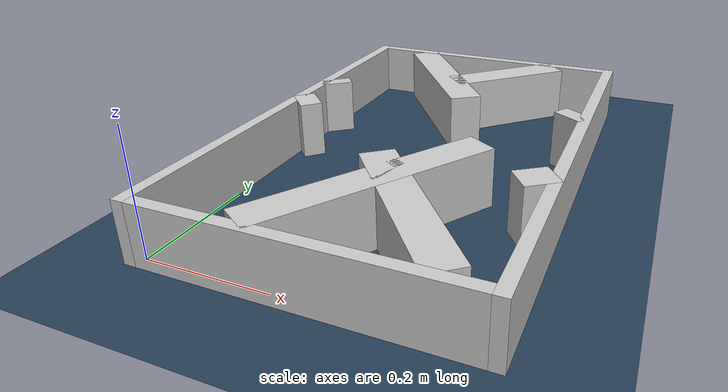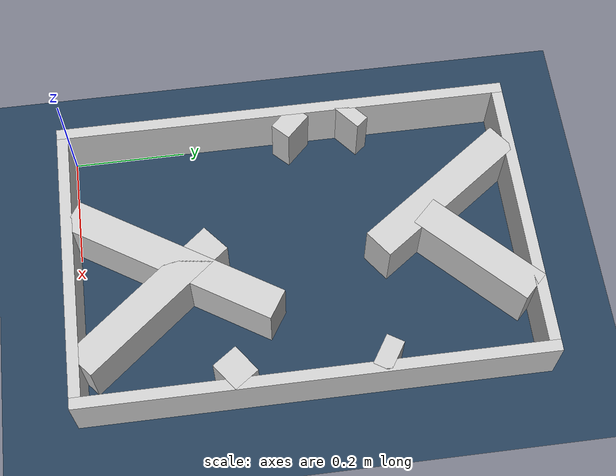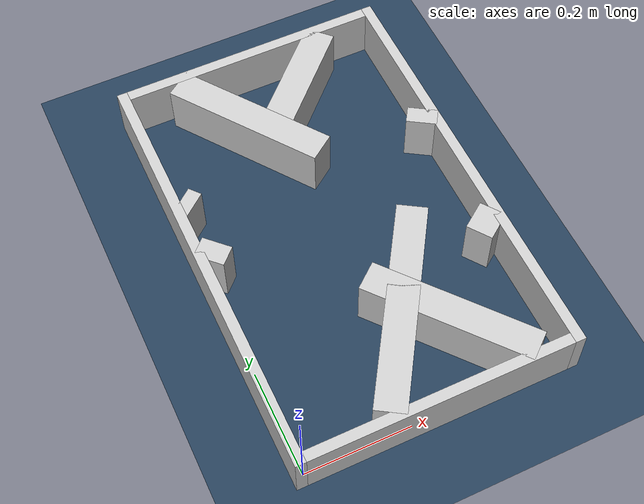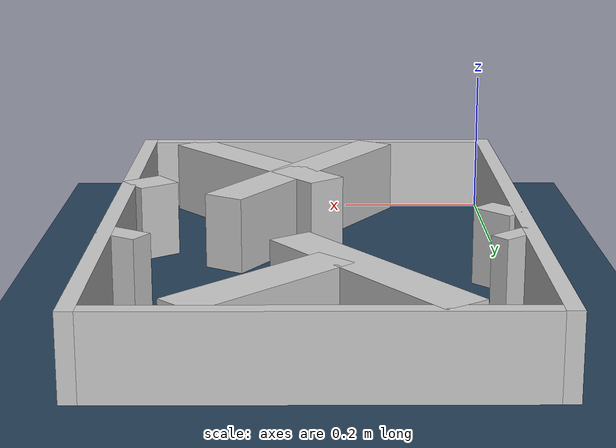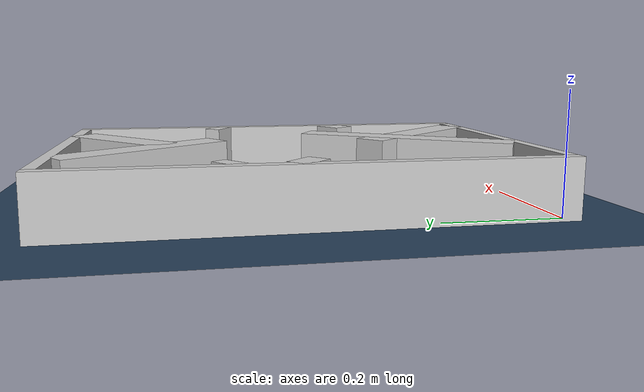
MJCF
<?xml version="1.0" ?>
<mujoco model="generated_real_template">
  <compiler angle="degree"/>
  <option timestep="0.002" integrator="implicitfast" iterations="100" cone="elliptic"/>
  <default>
    <geom density="1"/>
  </default>
  <asset>
    <texture builtin="gradient" height="3072" rgb1="0.3 0.5 0.7" rgb2="0 0 0" type="skybox" width="512"/>
    <texture builtin="checker" height="300" mark="edge" markrgb="0.8 0.8 0.8" name="groundplane" rgb1="0.2 0.3 0.4" rgb2="0.1 0.2 0.3" type="2d" width="300"/>
    <material name="groundplane" reflectance="0.2" texrepeat="5 5" texture="groundplane" texuniform="true"/>
  </asset>
  <worldbody>
    <light dir="0 0 -1" directional="true" pos="0 0 1.5"/>
    <geom name="floor" type="plane" condim="4" friction="0.5 0.005 0.001" material="groundplane" size="0 0 0.05"/>
    <body name="walls">
      <geom name="wall_boundary_left" type="box" condim="4" friction="1.0 0.005 0.0001" rgba="0.8 0.8 0.8 1" pos="-0.010000 0.387500 0.050000" euler="0 0 0.000000" size="0.010000 0.407500 0.050000"/>
      <geom name="wall_boundary_right" type="box" condim="4" friction="1.0 0.005 0.0001" rgba="0.8 0.8 0.8 1" pos="0.500000 0.387500 0.050000" euler="0 0 0.000000" size="0.010000 0.407500 0.050000"/>
      <geom name="wall_boundary_bottom" type="box" condim="4" friction="1.0 0.005 0.0001" rgba="0.8 0.8 0.8 1" pos="0.245000 -0.010000 0.050000" euler="0 0 0.000000" size="0.245000 0.010000 0.050000"/>
      <geom name="wall_boundary_top" type="box" condim="4" friction="1.0 0.005 0.0001" rgba="0.8 0.8 0.8 1" pos="0.245000 0.785000 0.050000" euler="0 0 0.000000" size="0.245000 0.010000 0.050000"/>
      <geom name="wall_inner_1_1" type="box" condim="4" friction="1.0 0.005 0.0001" rgba="0.8 0.8 0.8 1" pos="0.332896 0.122537 0.050000" euler="0 0 129.562665" size="0.158947 0.028500 0.050000"/>
      <geom name="wall_inner_1_2" type="box" condim="4" friction="1.0 0.005 0.0001" rgba="0.8 0.8 0.8 1" pos="0.010424 0.512856 0.050000" euler="0 0 129.562665" size="0.013269 0.028500 0.050000"/>
      <geom name="wall_inner_2_1" type="box" condim="4" friction="1.0 0.005 0.0001" rgba="0.8 0.8 0.8 1" pos="0.262440 0.168455 0.050000" euler="0 0 57.721288" size="0.199246 0.028500 0.050000"/>
      <geom name="wall_inner_2_2" type="box" condim="4" friction="1.0 0.005 0.0001" rgba="0.8 0.8 0.8 1" pos="0.477210 0.508467 0.050000" euler="0 0 57.721288" size="0.016279 0.028500 0.050000"/>
      <geom name="wall_inner_3_1" type="box" condim="4" friction="1.0 0.005 0.0001" rgba="0.8 0.8 0.8 1" pos="0.472257 0.254491 0.050000" euler="0 0 125.893221" size="0.024994 0.028500 0.050000"/>
      <geom name="wall_inner_3_2" type="box" condim="4" friction="1.0 0.005 0.0001" rgba="0.8 0.8 0.8 1" pos="0.187265 0.648290 0.050000" euler="0 0 125.893221" size="0.156411 0.028500 0.050000"/>
      <geom name="wall_inner_4_1" type="box" condim="4" friction="1.0 0.005 0.0001" rgba="0.8 0.8 0.8 1" pos="0.013822 0.400911 0.050000" euler="0 0 44.739800" size="0.019373 0.028500 0.050000"/>
      <geom name="wall_inner_4_2" type="box" condim="4" friction="1.0 0.005 0.0001" rgba="0.8 0.8 0.8 1" pos="0.307993 0.692422 0.050000" euler="0 0 44.739800" size="0.116970 0.028500 0.050000"/>
    </body>
  </worldbody>
</mujoco>
